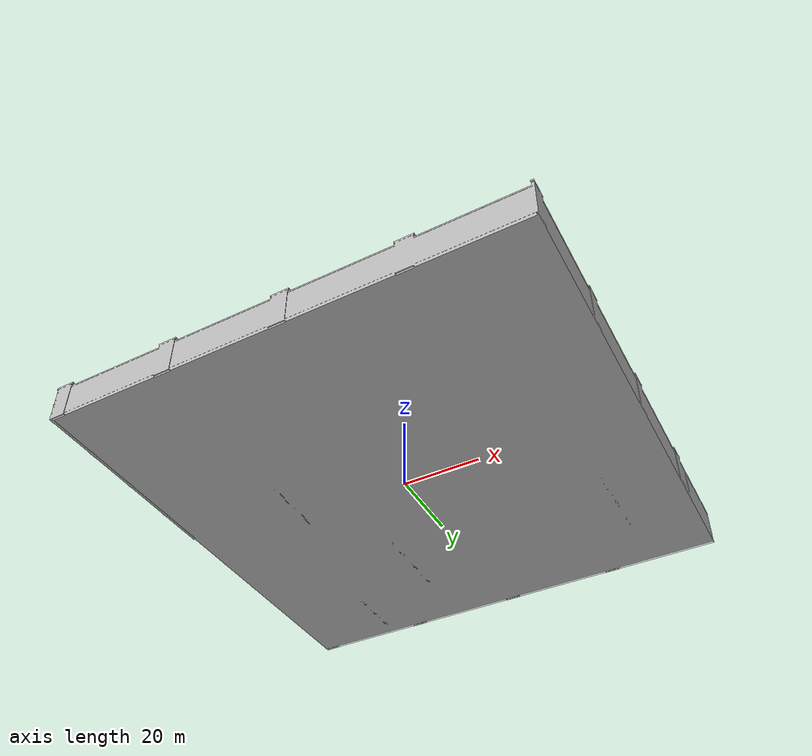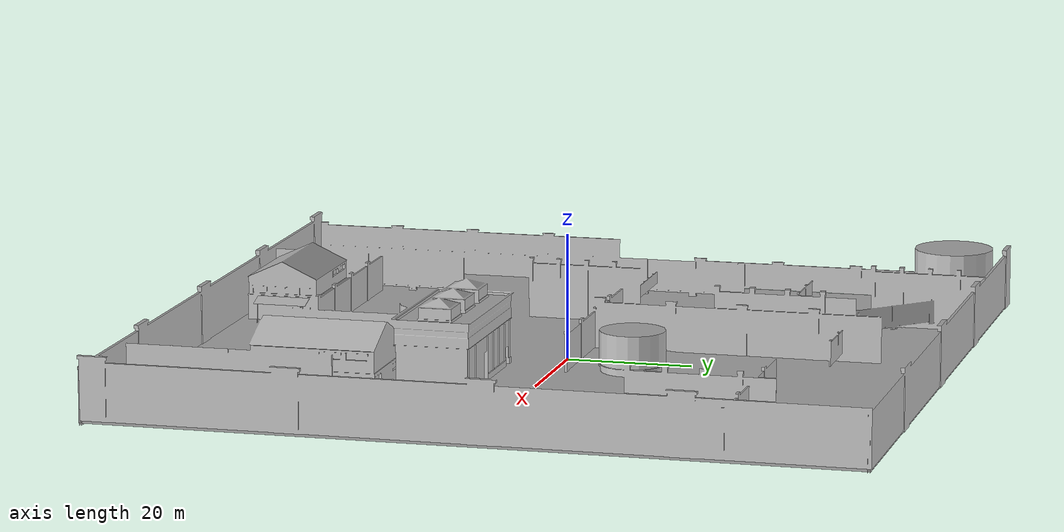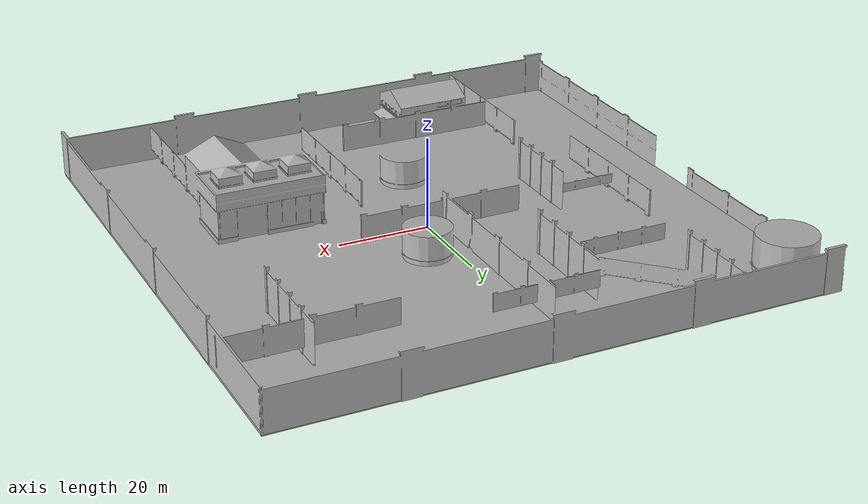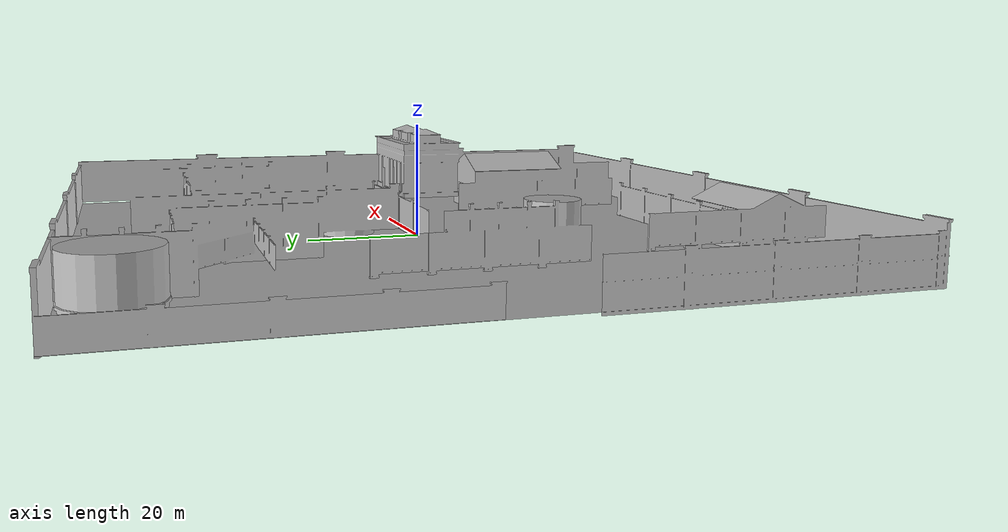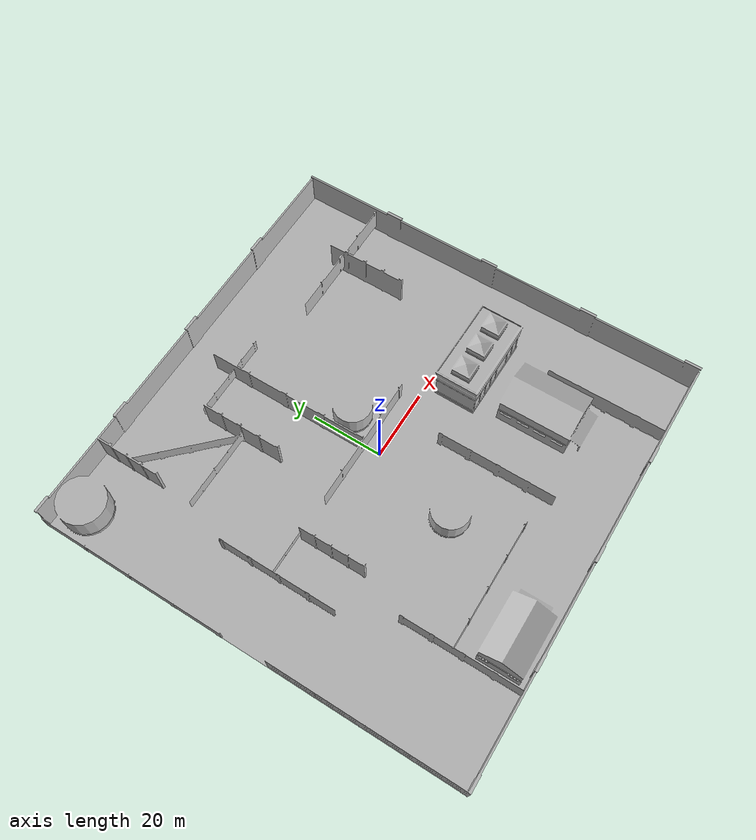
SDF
<?xml version="1.0" ?>
<sdf version="1.6">
  <model name="Room 4">
    <link name="link">
      <visual name="visual">
	    <geometry>
          <mesh>
            <uri>model://room4/meshes/room_4.dae</uri>
          </mesh>
        </geometry>
      </visual>
      <collision name="collision">
        <geometry>
          <mesh>
            <uri>model://room4/meshes/room_4.dae</uri>
          </mesh>
        </geometry>
      </collision>
</link>
  <static>1</static>
  </model>
</sdf>
